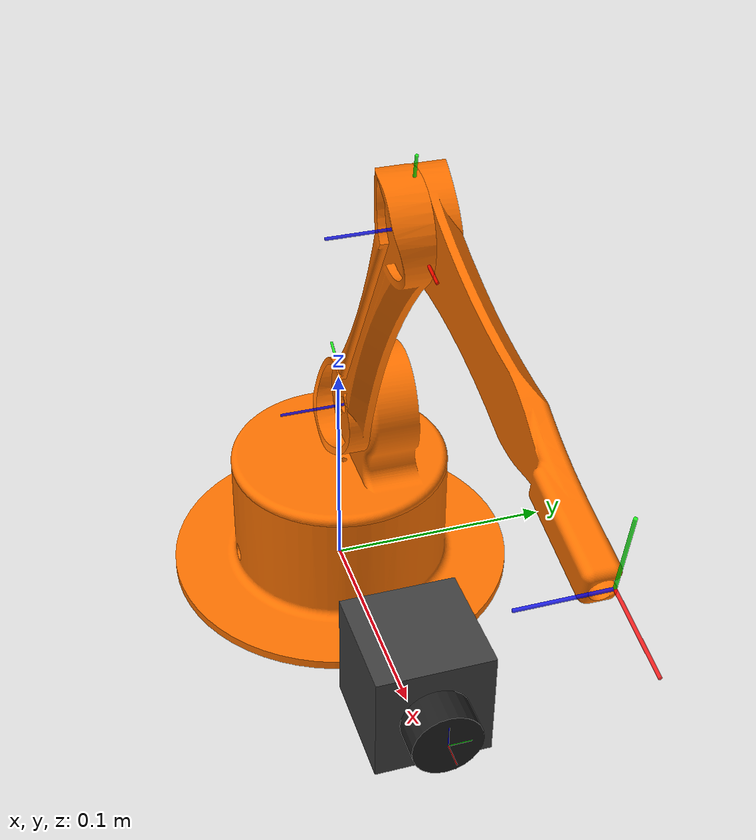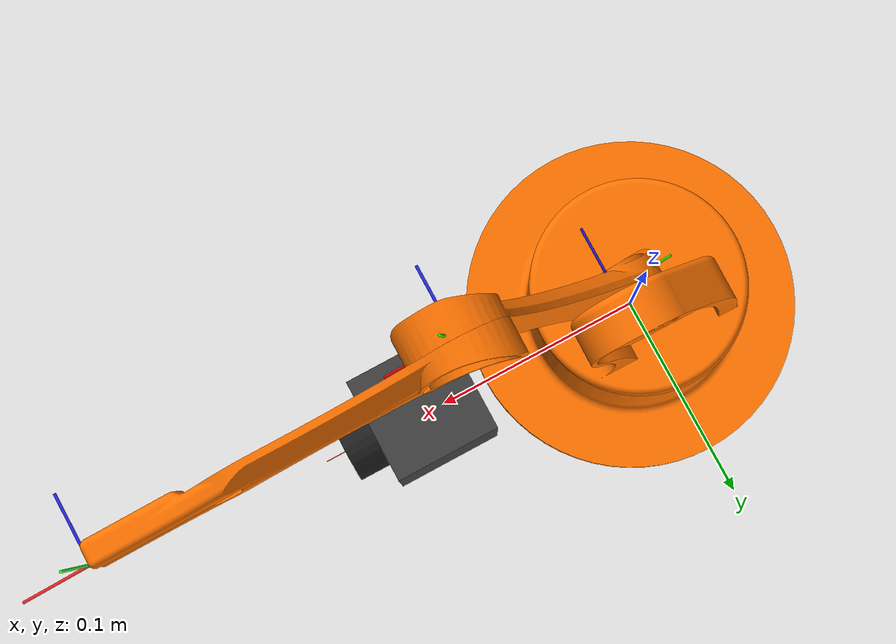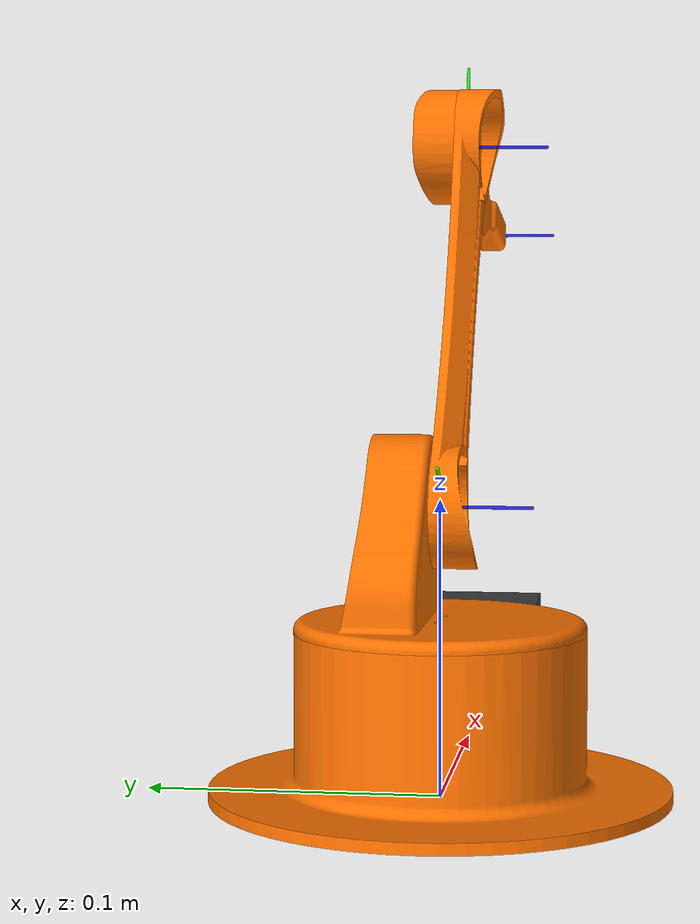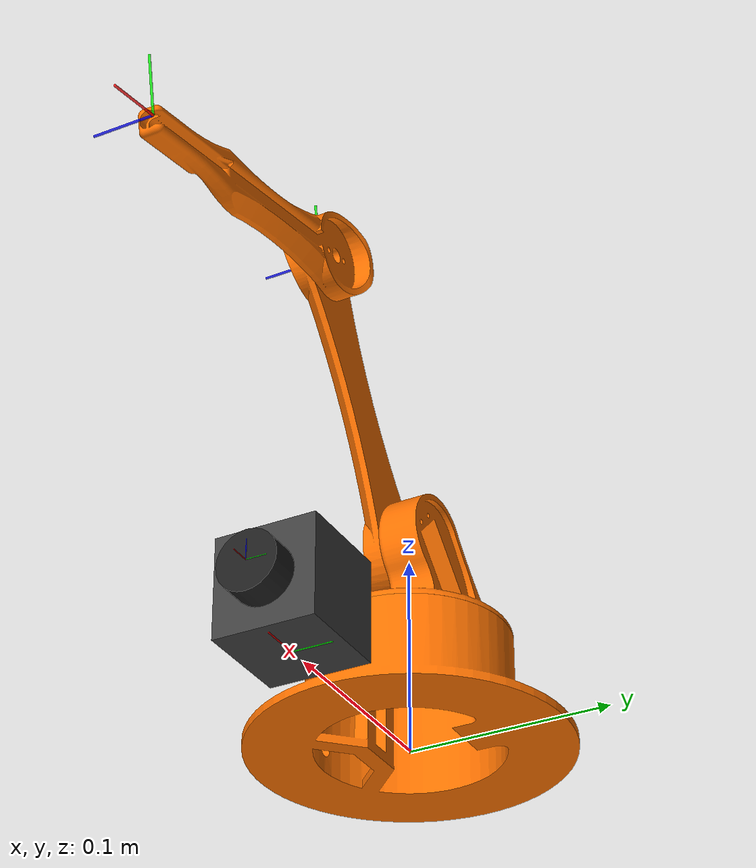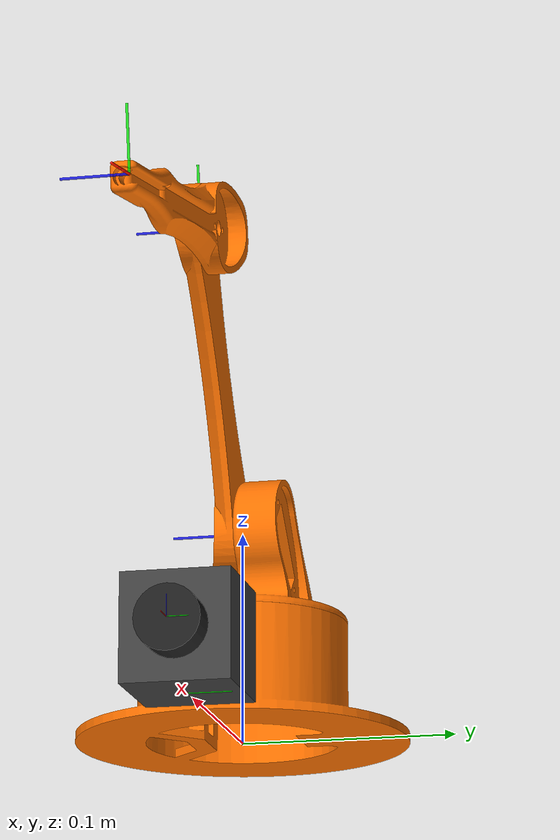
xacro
<?xml version="1.0"?>
<robot xmlns:xacro="http://www.ros.org/wiki/xacro" name="arm_3gdl">

  <!-- ==================== Materiales de Visualización ==================== -->
  <material name="abb_orange">
    <color rgba="1.0 0.45 0.0 1.0"/>
  </material>
  <material name="abb_black">
    <color rgba="0.12 0.12 0.12 1.0"/>
  </material>
  <material name="silver">
    <color rgba="0.75 0.75 0.75 1.0"/>
  </material>
  <material name="graphite">
    <color rgba="0.25 0.25 0.25 1.0"/>
  </material>
  <material name="brass">
    <color rgba="0.8 0.6 0.2 1.0"/>
  </material>
  <material name="laser_red">
    <color rgba="1.0 0.0 0.0 0.8"/>
  </material>

  <!-- ==================== Base Fija (Mundo) ==================== -->
  <link name="world"/>
  <joint name="world_to_base" type="fixed">
    <parent link="world"/>
    <child link="base_link"/>
    <origin xyz="0 0 0" rpy="1.57079632679 0 0"/>
  </joint>

  <!-- ==================== Eslabón Base ==================== -->
  <link name="base_link">
    <inertial>
      <mass value="1.0"/>
      <origin xyz="0 0 0" rpy="0 0 0"/>
      <inertia ixx="0.005" ixy="0.0" ixz="0.0" iyy="0.005" iyz="0.0" izz="0.005"/>
    </inertial>
    <visual>
      <origin xyz="-0.691316 -0.869483 -1.350860" rpy="0 0 0"/>
      <geometry>
        <mesh filename="package://arm_simulation/meshes/custom_arm/base.stl" scale="0.001 0.001 0.001"/>
      </geometry>
      <material name="abb_orange"/>
    </visual>
  </link>

  <!-- ==================== Articulación 1 (Rotación de Base) ==================== -->
  <joint name="joint1" type="revolute">
    <!-- Rotated by roll -pi/2 so its local Z axis is vertical, matching base rotation -->
    <origin rpy="-1.57079632679 0 0" xyz="0 0.060 0"/>
    <parent link="base_link"/>
    <child link="link1"/>
    <axis xyz="0 0 1"/>
    <limit lower="-1.570796" upper="1.570796" effort="20.0" velocity="1.0"/>
    <dynamics damping="1.0" friction="1.0"/>
  </joint>

  <!-- ==================== Eslabón 1 ==================== -->
  <link name="link1">
    <inertial>
      <mass value="0.5"/>
      <origin xyz="0 0 0" rpy="0 0 0"/>
      <inertia ixx="0.002" ixy="0.0" ixz="0.0" iyy="0.002" iyz="0.0" izz="0.002"/>
    </inertial>
    <visual>
      <!-- Compenses the -pi/2 roll rotation of joint1 to draw link1 mesh correctly -->
      <origin xyz="-0.691316 1.350860 -0.929483" rpy="1.57079632679 0 0"/>
      <geometry>
        <mesh filename="package://arm_simulation/meshes/custom_arm/link1.stl" scale="0.001 0.001 0.001"/>
      </geometry>
      <material name="abb_orange"/>
    </visual>
  </link>

  <!-- ==================== Articulación 2 (Hombro) ==================== -->
  <joint name="joint2" type="revolute">
    <!-- Rotated by roll pi/2 to restore alignment with the rest of the robot -->
    <origin rpy="1.57079632679 0 0" xyz="0.015 0 0.036"/>
    <parent link="link1"/>
    <child link="link2"/>
    <axis xyz="0 0 1"/>
    <limit lower="-1.570796" upper="1.570796" effort="25.0" velocity="1.0"/>
    <dynamics damping="1.0" friction="1.0"/>
  </joint>

  <!-- ==================== Eslabón 2 ==================== -->
  <link name="link2">
    <inertial>
      <mass value="0.5"/>
      <origin xyz="0 0 0" rpy="0 0 0"/>
      <inertia ixx="0.002" ixy="0.0" ixz="0.0" iyy="0.002" iyz="0.0" izz="0.002"/>
    </inertial>
    <visual>
      <origin xyz="-0.706231 -0.965655 -1.350860" rpy="0 0 0"/>
      <geometry>
        <mesh filename="package://arm_simulation/meshes/custom_arm/link2.stl" scale="0.001 0.001 0.001"/>
      </geometry>
      <material name="abb_orange"/>
    </visual>
  </link>

  <!-- ==================== Articulación 3 (Codo) ==================== -->
  <joint name="joint3" type="revolute">
    <origin rpy="0 0 0" xyz="0.075158 0.125169 0"/>
    <parent link="link2"/>
    <child link="link3"/>
    <axis xyz="0 0 1"/>
    <limit lower="-1.570796" upper="1.570796" effort="20.0" velocity="1.5"/>
    <dynamics damping="1.0" friction="1.0"/>
  </joint>

  <!-- ==================== Eslabón 3 ==================== -->
  <link name="link3">
    <inertial>
      <mass value="0.3"/>
      <origin xyz="0 0 0" rpy="0 0 0"/>
      <inertia ixx="0.001" ixy="0.0" ixz="0.0" iyy="0.001" iyz="0.0" izz="0.001"/>
    </inertial>
    <visual>
      <origin xyz="-0.781487 -1.090987 -1.350860" rpy="0 0 0"/>
      <geometry>
        <mesh filename="package://arm_simulation/meshes/custom_arm/link3.stl" scale="0.001 0.001 0.001"/>
      </geometry>
      <material name="abb_orange"/>
    </visual>
  </link>

  <!-- ==================== Acoplamiento de Herramienta (Flange y Tool0) ==================== -->
  <link name="flange">
    <inertial>
      <mass value="0.001"/>
      <origin xyz="0 0 0" rpy="0 0 0"/>
      <inertia ixx="1e-6" ixy="0" ixz="0" iyy="1e-6" iyz="0" izz="1e-6"/>
    </inertial>
  </link>
  <joint type="fixed" name="joint_3-flange">
    <!-- Centered on the outer face, shifted further out, matching system3 orientation -->
    <origin xyz="0.158174 -0.030033 -0.007" rpy="0 0 -0.191392"/>
    <parent link="link3"/>
    <child link="flange"/>
  </joint>

  <!-- Evitar que Gazebo fusione (lump) el link de la brida -->
  <gazebo reference="joint_3-flange">
    <preserveFixedJoint>true</preserveFixedJoint>
  </gazebo>

  <link name="tool0"/>
  <joint name="flange-tool0" type="fixed">
    <origin xyz="0 0 0" rpy="0 1.57079632679 0" />
    <parent link="flange" />
    <child link="tool0" />
  </joint>

  <!-- ==================== Controladores y Plugins de Gazebo ==================== -->
  <gazebo>
    <plugin name="gazebo_ros2_control" filename="libgazebo_ros2_control.so">
      <parameters>$(find arm_simulation)/config/controllers.yaml</parameters>
    </plugin>
  </gazebo>

  <ros2_control name="GazeboSystem" type="system">
    <hardware>
      <plugin>gazebo_ros2_control/GazeboSystem</plugin>
    </hardware>
    <joint name="joint1">
      <command_interface name="position">
        <param name="min">-2.87979</param>
        <param name="max">2.87979</param>
      </command_interface>
      <state_interface name="position">
        <param name="initial_value">0.0</param>
      </state_interface>
      <state_interface name="velocity"/>
    </joint>
    <joint name="joint2">
      <command_interface name="position">
        <param name="min">-1.91986</param>
        <param name="max">1.91986</param>
      </command_interface>
      <state_interface name="position">
        <param name="initial_value">0.0</param>
      </state_interface>
      <state_interface name="velocity"/>
    </joint>
    <joint name="joint3">
      <command_interface name="position">
        <param name="min">-1.91986</param>
        <param name="max">1.22173</param>
      </command_interface>
      <state_interface name="position">
        <param name="initial_value">0.0</param>
      </state_interface>
      <state_interface name="velocity"/>
    </joint>
  </ros2_control>

  <!-- ==================== Macro para Sistemas de Referencia (RGB) ==================== -->
  <xacro:macro name="visualize_frame" params="parent prefix xyz:='0 0 0' rpy:='0 0 0' scale:=0.05">
    <!-- Eje X (Rojo) -->
    <link name="${prefix}_frame_x">
      <inertial>
        <mass value="0.0001"/>
        <origin xyz="0 0 0" rpy="0 0 0"/>
        <inertia ixx="1e-9" ixy="0" ixz="0" iyy="1e-9" iyz="0" izz="1e-9"/>
      </inertial>
      <visual>
        <origin xyz="${scale/4} 0 0" rpy="0 1.57079632679 0"/>
        <geometry>
          <cylinder radius="${scale*0.01}" length="${scale/2}"/>
        </geometry>
        <material name="red">
          <color rgba="1.0 0.0 0.0 0.8"/>
        </material>
      </visual>
    </link>
    <joint name="${prefix}_frame_x_joint" type="fixed">
      <origin xyz="${xyz}" rpy="${rpy}"/>
      <parent link="${parent}"/>
      <child link="${prefix}_frame_x"/>
    </joint>
    <gazebo reference="${prefix}_frame_x">
      <material>Gazebo/Red</material>
    </gazebo>

    <!-- Eje Y (Verde) -->
    <link name="${prefix}_frame_y">
      <inertial>
        <mass value="0.0001"/>
        <origin xyz="0 0 0" rpy="0 0 0"/>
        <inertia ixx="1e-9" ixy="0" ixz="0" iyy="1e-9" iyz="0" izz="1e-9"/>
      </inertial>
      <visual>
        <origin xyz="0 ${scale/4} 0" rpy="-1.57079632679 0 0"/>
        <geometry>
          <cylinder radius="${scale*0.01}" length="${scale/2}"/>
        </geometry>
        <material name="green">
          <color rgba="0.0 1.0 0.0 0.8"/>
        </material>
      </visual>
    </link>
    <joint name="${prefix}_frame_y_joint" type="fixed">
      <origin xyz="${xyz}" rpy="${rpy}"/>
      <parent link="${parent}"/>
      <child link="${prefix}_frame_y"/>
    </joint>
    <gazebo reference="${prefix}_frame_y">
      <material>Gazebo/Green</material>
    </gazebo>

    <!-- Eje Z (Azul) -->
    <link name="${prefix}_frame_z">
      <inertial>
        <mass value="0.0001"/>
        <origin xyz="0 0 0" rpy="0 0 0"/>
        <inertia ixx="1e-9" ixy="0" ixz="0" iyy="1e-9" iyz="0" izz="1e-9"/>
      </inertial>
      <visual>
        <origin xyz="0 0 ${scale/4}" rpy="0 0 0"/>
        <geometry>
          <cylinder radius="${scale*0.01}" length="${scale/2}"/>
        </geometry>
        <material name="blue">
          <color rgba="0.0 0.0 1.0 0.8"/>
        </material>
      </visual>
    </link>
    <joint name="${prefix}_frame_z_joint" type="fixed">
      <origin xyz="${xyz}" rpy="${rpy}"/>
      <parent link="${parent}"/>
      <child link="${prefix}_frame_z"/>
    </joint>
    <gazebo reference="${prefix}_frame_z">
      <material>Gazebo/Blue</material>
    </gazebo>
  </xacro:macro>

  <!-- Instanciación de los Sistemas de Referencia en cada Articulación (D-H Secuencial) -->
  <xacro:visualize_frame parent="base_link" prefix="system0" xyz="0 0 0" rpy="-1.57079632679 0 0" scale="0.08"/>
  <xacro:visualize_frame parent="link2" prefix="system1" xyz="0 0 0" rpy="0 0 1.030041" scale="0.06"/>
  <xacro:visualize_frame parent="link3" prefix="system2" xyz="0 0 0" rpy="0 0 -0.191392" scale="0.06"/>
  <xacro:visualize_frame parent="flange" prefix="system3" xyz="0 0 0" rpy="0 0 0" scale="0.06"/>
  <!-- ==================== Camara de Monitoreo (Gazebo) ==================== -->
  <link name="camera_link">
    <inertial>
      <mass value="0.1"/>
      <origin xyz="0 0 0" rpy="0 0 0"/>
      <inertia ixx="1e-4" ixy="0" ixz="0" iyy="1e-4" iyz="0" izz="1e-4"/>
    </inertial>
    <visual>
      <!-- Cuerpo de la camara -->
      <origin xyz="0 0 0" rpy="0 0 0"/>
      <geometry>
        <box size="0.05 0.05 0.05"/>
      </geometry>
      <material name="graphite"/>
    </visual>
    <visual>
      <!-- Lente de la camara -->
      <origin xyz="0.03 0 0" rpy="0 1.57079632679 0"/>
      <geometry>
        <cylinder radius="0.015" length="0.02"/>
      </geometry>
      <material name="abb_black"/>
    </visual>
  </link>

  <joint name="camera_joint" type="fixed">
    <!-- Ubicada sobre el eje X positivo de system0, conectada a base_link para evitar fallos de spawn en Gazebo -->
    <origin xyz="0.11 0.025 0.0" rpy="-1.57079632679 0 0"/>
    <parent link="base_link"/>
    <child link="camera_link"/>
  </joint>

  <!-- Plugin de Gazebo para transmitir la imagen en ROS 2 -->
  <gazebo reference="camera_link">
    <material>Gazebo/DarkGrey</material>
    <sensor type="camera" name="work_camera">
      <update_rate>15.0</update_rate>
      <visualize>true</visualize>
      <camera name="head">
        <horizontal_fov>1.085595</horizontal_fov>
        <image>
          <width>640</width>
          <height>480</height>
          <format>R8G8B8</format>
        </image>
        <clip>
          <near>0.05</near>
          <far>8.0</far>
        </clip>
      </camera>
      <plugin name="camera_controller" filename="libgazebo_ros_camera.so">
        <frame_name>camera_link</frame_name>
        <camera_name>camera</camera_name>
      </plugin>
    </sensor>
  </gazebo>

  <!-- Sistemas de referencia de la camara (Base y Lente) -->
  <xacro:visualize_frame parent="base_link" prefix="camera_base" xyz="0.11 0.0 0.0" rpy="-1.57079632679 0 0" scale="0.04"/>
  <xacro:visualize_frame parent="base_link" prefix="camera_lens" xyz="0.15 0.025 0.0" rpy="-1.57079632679 0 0" scale="0.02"/>

  <!-- Colores de los eslabones en Gazebo Classic -->
  <gazebo reference="base_link">
    <material>Gazebo/Orange</material>
  </gazebo>
  <gazebo reference="link1">
    <material>Gazebo/Orange</material>
  </gazebo>
  <gazebo reference="link2">
    <material>Gazebo/Orange</material>
  </gazebo>
  <gazebo reference="link3">
    <material>Gazebo/Orange</material>
  </gazebo>

</robot>
